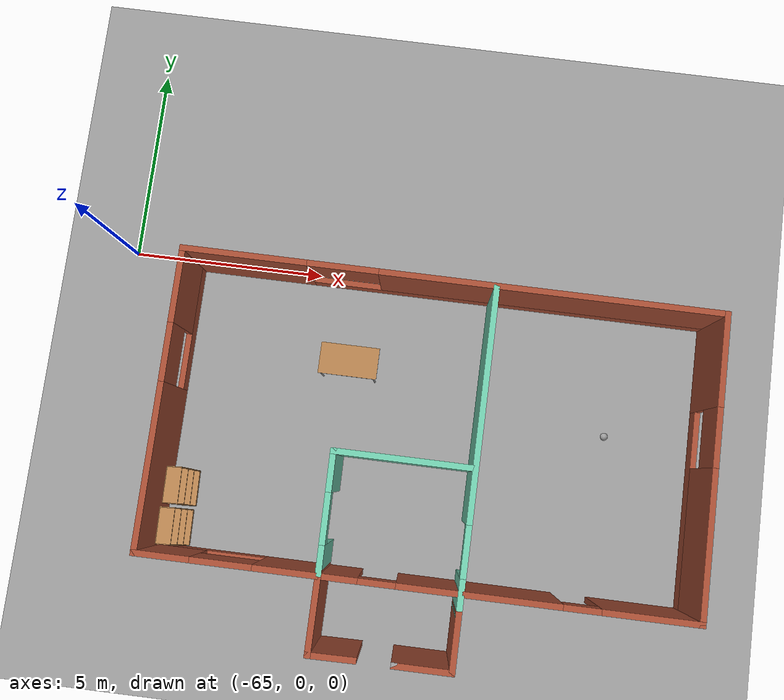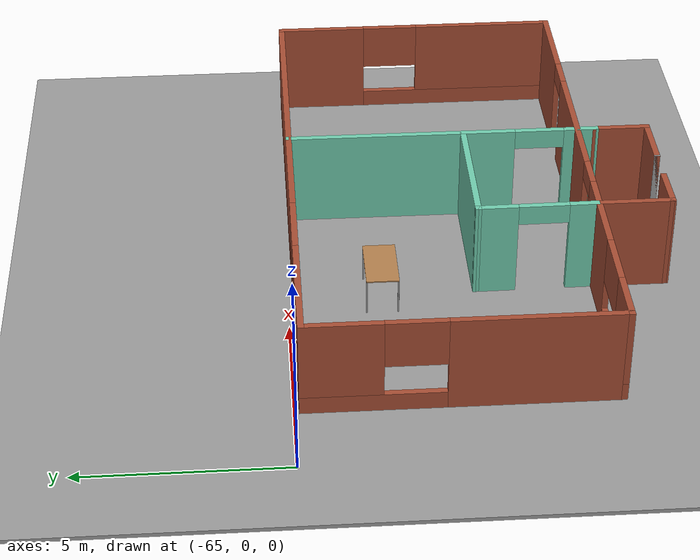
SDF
<sdf version="1.6">
 <world name="default">
  <plugin name="welcome" filename="libwelcome.so"/>
  <light name="sun" type="directional">
   <pose>0 0 10 0 -0 0</pose>
   <diffuse>0.8 0.8 0.8 1</diffuse>
   <specular>0.2 0.2 0.2 1</specular>
   <attenuation>
    <range>1000</range>
    <constant>0.9</constant>
    <linear>0.01</linear>
    <quadratic>0.001</quadratic>
   </attenuation>
   <direction>-0.5 0.1 -0.9</direction>
  </light>
  <model name="ground_plane">
   <static>1</static>
   <link name="link">
    <collision name="collision">
     <geometry><plane><normal>0 0 1</normal><size>100 100</size></plane></geometry>
     <surface>
      <contact><collide_bitmask>65535</collide_bitmask></contact>
      <friction><ode><mu>100</mu><mu2>50</mu2></ode></friction>
     </surface>
    </collision>
    <visual name="visual">
     <cast_shadows>0</cast_shadows>
     <geometry><plane><normal>0 0 1</normal><size>100 100</size></plane></geometry>
     <material>
      <script><uri>file://media/materials/scripts/gazebo.material</uri><name>Gazebo/Grey</name></script>
     </material>
    </visual>
   </link>
  </model>
  <gravity>0 0 -9.8</gravity>
  <magnetic_field>6e-06 2.3e-05 -4.2e-05</magnetic_field>
  <atmosphere type="adiabatic"/>
  <physics name="default_physics" default="0" type="ode">
   <max_step_size>0.001</max_step_size>
   <real_time_factor>1</real_time_factor>
   <real_time_update_rate>1000</real_time_update_rate>
  </physics>
  <scene><ambient>0.4 0.4 0.4 1</ambient><background>0.7 0.7 0.7 1</background><shadows>1</shadows></scene>
  <spherical_coordinates>
   <surface_model>EARTH_WGS84</surface_model>
   <latitude_deg>0</latitude_deg>
   <longitude_deg>0</longitude_deg>
   <elevation>0</elevation>
   <heading_deg>0</heading_deg>
  </spherical_coordinates>
  <model name="house">
   <pose>-56.5032 -4.754 0 0 -0 0</pose>
   <link name="Wall_0">
    <pose>0 4.56992 0 0 -0 0</pose>
    <visual name="Wall_0_Visual_0">
     <pose>-5.18175 0 1.25 0 -0 0</pose>
     <geometry><box><size>3.1365 0.15 2.5</size></box></geometry>
     <material>
      <script><uri>file://media/materials/scripts/gazebo.material</uri><name>Gazebo/Bricks</name></script>
      <ambient>1 1 1 1</ambient>
     </material>
     <meta><layer>0</layer></meta>
    </visual>
    <collision name="Wall_0_Collision_0">
     <geometry><box><size>3.1365 0.15 2.5</size></box></geometry>
     <pose>-5.18175 0 1.25 0 -0 0</pose>
    </collision>
    <visual name="Wall_0_Visual_1">
     <pose>1.56825 0 0.25 0 -0 0</pose>
     <geometry><box><size>10.3635 0.15 0.5</size></box></geometry>
     <material>
      <script><uri>file://media/materials/scripts/gazebo.material</uri><name>Gazebo/Bricks</name></script>
      <ambient>1 1 1 1</ambient>
     </material>
     <meta><layer>0</layer></meta>
    </visual>
    <collision name="Wall_0_Collision_1">
     <geometry><box><size>10.3635 0.15 0.5</size></box></geometry>
     <pose>1.56825 0 0.25 0 -0 0</pose>
    </collision>
    <visual name="Wall_0_Visual_2">
     <pose>2.45125 0 1.5 0 -0 0</pose>
     <geometry><box><size>8.5975 0.15 2</size></box></geometry>
     <material>
      <script><uri>file://media/materials/scripts/gazebo.material</uri><name>Gazebo/Bricks</name></script>
      <ambient>1 1 1 1</ambient>
     </material>
     <meta><layer>0</layer></meta>
    </visual>
    <collision name="Wall_0_Collision_2">
     <geometry><box><size>8.5975 0.15 2</size></box></geometry>
     <pose>2.45125 0 1.5 0 -0 0</pose>
    </collision>
    <visual name="Wall_0_Visual_3">
     <pose>-2.7305 0 1.9 0 -0 0</pose>
     <geometry><box><size>1.766 0.15 1.2</size></box></geometry>
     <material>
      <script><uri>file://media/materials/scripts/gazebo.material</uri><name>Gazebo/Bricks</name></script>
      <ambient>1 1 1 1</ambient>
     </material>
     <meta><layer>0</layer></meta>
    </visual>
    <collision name="Wall_0_Collision_3">
     <geometry><box><size>1.766 0.15 1.2</size></box></geometry>
     <pose>-2.7305 0 1.9 0 -0 0</pose>
    </collision>
   </link>
   <link name="Wall_1">
    <pose>6.675 0.894922 0 0 0 -1.5708</pose>
    <visual name="Wall_1_Visual_0">
     <pose>-2.58137 0 1.25 0 -0 0</pose>
     <geometry><box><size>2.33725 0.15 2.5</size></box></geometry>
     <material>
      <script><uri>file://media/materials/scripts/gazebo.material</uri><name>Gazebo/Bricks</name></script>
      <ambient>1 1 1 1</ambient>
     </material>
     <meta><layer>0</layer></meta>
    </visual>
    <collision name="Wall_1_Collision_0">
     <geometry><box><size>2.33725 0.15 2.5</size></box></geometry>
     <pose>-2.58137 0 1.25 0 -0 0</pose>
    </collision>
    <visual name="Wall_1_Visual_1">
     <pose>1.16863 0 0.25 0 -0 0</pose>
     <geometry><box><size>5.16275 0.15 0.5</size></box></geometry>
     <material>
      <script><uri>file://media/materials/scripts/gazebo.material</uri><name>Gazebo/Bricks</name></script>
      <ambient>1 1 1 1</ambient>
     </material>
     <meta><layer>0</layer></meta>
    </visual>
    <collision name="Wall_1_Collision_1">
     <geometry><box><size>5.16275 0.15 0.5</size></box></geometry>
     <pose>1.16863 0 0.25 0 -0 0</pose>
    </collision>
    <visual name="Wall_1_Visual_2">
     <pose>1.89637 0 1.5 0 -0 0</pose>
     <geometry><box><size>3.70725 0.15 2</size></box></geometry>
     <material>
      <script><uri>file://media/materials/scripts/gazebo.material</uri><name>Gazebo/Bricks</name></script>
      <ambient>1 1 1 1</ambient>
     </material>
     <meta><layer>0</layer></meta>
    </visual>
    <collision name="Wall_1_Collision_2">
     <geometry><box><size>3.70725 0.15 2</size></box></geometry>
     <pose>1.89637 0 1.5 0 -0 0</pose>
    </collision>
    <visual name="Wall_1_Visual_3">
     <pose>-0.685 0 1.9 0 -0 0</pose>
     <geometry><box><size>1.4555 0.15 1.2</size></box></geometry>
     <material>
      <script><uri>file://media/materials/scripts/gazebo.material</uri><name>Gazebo/Bricks</name></script>
      <ambient>1 1 1 1</ambient>
     </material>
     <meta><layer>0</layer></meta>
    </visual>
    <collision name="Wall_1_Collision_3">
     <geometry><box><size>1.4555 0.15 1.2</size></box></geometry>
     <pose>-0.685 0 1.9 0 -0 0</pose>
    </collision>
   </link>
   <link name="Wall_10">
    <collision name="Wall_10_Collision">
     <geometry><box><size>3.5 0.15 2.5</size></box></geometry>
     <pose>0 0 1.25 0 -0 0</pose>
    </collision>
    <visual name="Wall_10_Visual">
     <pose>0 0 1.25 0 -0 0</pose>
     <geometry><box><size>3.5 0.15 2.5</size></box></geometry>
     <material>
      <script><uri>file://media/materials/scripts/gazebo.material</uri><name>Gazebo/Grey</name></script>
      <ambient>0.435294 0.796078 0.67451 1</ambient>
     </material>
     <meta><layer>0</layer></meta>
    </visual>
    <pose>-0.679 0.142422 0 0 -0 3.14129</pose>
   </link>
   <link name="Wall_11">
    <pose>-2.337 -1.28808 0 0 0 -1.55892</pose>
    <visual name="Wall_11_Visual_0">
     <pose>-0.979955 0 1.25 0 -0 0</pose>
     <geometry><box><size>1.0518 0.15 2.5</size></box></geometry>
     <material>
      <script><uri>file://media/materials/scripts/gazebo.material</uri><name>Gazebo/Grey</name></script>
      <ambient>0.435294 0.796078 0.67451 1</ambient>
     </material>
     <meta><layer>0</layer></meta>
    </visual>
    <collision name="Wall_11_Collision_0">
     <geometry><box><size>1.0518 0.15 2.5</size></box></geometry>
     <pose>-0.979955 0 1.25 0 -0 0</pose>
    </collision>
    <visual name="Wall_11_Visual_1">
     <pose>1.14265 0 1.25 0 -0 0</pose>
     <geometry><box><size>0.72641 0.15 2.5</size></box></geometry>
     <material>
      <script><uri>file://media/materials/scripts/gazebo.material</uri><name>Gazebo/Grey</name></script>
      <ambient>0.435294 0.796078 0.67451 1</ambient>
     </material>
     <meta><layer>0</layer></meta>
    </visual>
    <collision name="Wall_11_Collision_1">
     <geometry><box><size>0.72641 0.15 2.5</size></box></geometry>
     <pose>1.14265 0 1.25 0 -0 0</pose>
    </collision>
    <visual name="Wall_11_Visual_2">
     <pose>0.162694 0 2.25 0 -0 0</pose>
     <geometry><box><size>1.2335 0.15 0.5</size></box></geometry>
     <material>
      <script><uri>file://media/materials/scripts/gazebo.material</uri><name>Gazebo/Grey</name></script>
      <ambient>0.435294 0.796078 0.67451 1</ambient>
     </material>
     <meta><layer>0</layer></meta>
    </visual>
    <collision name="Wall_11_Collision_2">
     <geometry><box><size>1.2335 0.15 0.5</size></box></geometry>
     <pose>0.162694 0 2.25 0 -0 0</pose>
    </collision>
   </link>
   <link name="Wall_15">
    <collision name="Wall_15_Collision">
     <geometry><box><size>2 0.15 2.5</size></box></geometry>
     <pose>0 0 1.25 0 -0 0</pose>
    </collision>
    <visual name="Wall_15_Visual">
     <pose>0 0 1.25 0 -0 0</pose>
     <geometry><box><size>2 0.15 2.5</size></box></geometry>
     <material>
      <script><uri>file://media/materials/scripts/gazebo.material</uri><name>Gazebo/Bricks</name></script>
      <ambient>0.760784 0.662745 0.627451 1</ambient>
     </material>
     <meta><layer>0</layer></meta>
    </visual>
    <pose>-2.32 -3.64408 0 0 0 -1.5708</pose>
   </link>
   <link name="Wall_16">
    <collision name="Wall_16_Collision">
     <geometry><box><size>1.21575 0.15 2.5</size></box></geometry>
     <pose>0 0 1.25 0 -0 0</pose>
    </collision>
    <visual name="Wall_16_Visual">
     <pose>0 0 1.25 0 -0 0</pose>
     <geometry><box><size>1.21575 0.15 2.5</size></box></geometry>
     <material>
      <script><uri>file://media/materials/scripts/gazebo.material</uri><name>Gazebo/Bricks</name></script>
      <ambient>1 1 1 1</ambient>
     </material>
     <meta><layer>0</layer></meta>
    </visual>
    <pose>-1.7875 -4.56308 0 0 -0 0.011267</pose>
   </link>
   <link name="Wall_2">
    <pose>0 -2.78008 0 0 -0 3.14159</pose>
    <visual name="Wall_2_Visual_0">
     <pose>-5.53812 0 1.25 0 -0 0</pose>
     <geometry><box><size>2.42375 0.15 2.5</size></box></geometry>
     <material>
      <script><uri>file://media/materials/scripts/gazebo.material</uri><name>Gazebo/Bricks</name></script>
      <ambient>1 1 1 1</ambient>
     </material>
     <meta><layer>0</layer></meta>
    </visual>
    <collision name="Wall_2_Collision_0">
     <geometry><box><size>2.42375 0.15 2.5</size></box></geometry>
     <pose>-5.53812 0 1.25 0 -0 0</pose>
    </collision>
    <visual name="Wall_2_Visual_1">
     <pose>-1.46412 0 1.25 0 -0 0</pose>
     <geometry><box><size>3.92425 0.15 2.5</size></box></geometry>
     <material>
      <script><uri>file://media/materials/scripts/gazebo.material</uri><name>Gazebo/Bricks</name></script>
      <ambient>1 1 1 1</ambient>
     </material>
     <meta><layer>0</layer></meta>
    </visual>
    <collision name="Wall_2_Collision_1">
     <geometry><box><size>3.92425 0.15 2.5</size></box></geometry>
     <pose>-1.46412 0 1.25 0 -0 0</pose>
    </collision>
    <visual name="Wall_2_Visual_2">
     <pose>2.6405 0 1.25 0 -0 0</pose>
     <geometry><box><size>2.485 0.15 2.5</size></box></geometry>
     <material>
      <script><uri>file://media/materials/scripts/gazebo.material</uri><name>Gazebo/Bricks</name></script>
      <ambient>1 1 1 1</ambient>
     </material>
     <meta><layer>0</layer></meta>
    </visual>
    <collision name="Wall_2_Collision_2">
     <geometry><box><size>2.485 0.15 2.5</size></box></geometry>
     <pose>2.6405 0 1.25 0 -0 0</pose>
    </collision>
    <visual name="Wall_2_Visual_3">
     <pose>5.3165 0 0.25 0 -0 0</pose>
     <geometry><box><size>2.867 0.15 0.5</size></box></geometry>
     <material>
      <script><uri>file://media/materials/scripts/gazebo.material</uri><name>Gazebo/Bricks</name></script>
      <ambient>1 1 1 1</ambient>
     </material>
     <meta><layer>0</layer></meta>
    </visual>
    <collision name="Wall_2_Collision_3">
     <geometry><box><size>2.867 0.15 0.5</size></box></geometry>
     <pose>5.3165 0 0.25 0 -0 0</pose>
    </collision>
    <visual name="Wall_2_Visual_4">
     <pose>6.05575 0 1.5 0 -0 0</pose>
     <geometry><box><size>1.3885 0.15 2</size></box></geometry>
     <material>
      <script><uri>file://media/materials/scripts/gazebo.material</uri><name>Gazebo/Bricks</name></script>
      <ambient>1 1 1 1</ambient>
     </material>
     <meta><layer>0</layer></meta>
    </visual>
    <collision name="Wall_2_Collision_4">
     <geometry><box><size>1.3885 0.15 2</size></box></geometry>
     <pose>6.05575 0 1.5 0 -0 0</pose>
    </collision>
    <visual name="Wall_2_Visual_5">
     <pose>4.62225 0 1.9 0 -0 0</pose>
     <geometry><box><size>1.4785 0.15 1.2</size></box></geometry>
     <material>
      <script><uri>file://media/materials/scripts/gazebo.material</uri><name>Gazebo/Bricks</name></script>
      <ambient>1 1 1 1</ambient>
     </material>
     <meta><layer>0</layer></meta>
    </visual>
    <collision name="Wall_2_Collision_5">
     <geometry><box><size>1.4785 0.15 1.2</size></box></geometry>
     <pose>4.62225 0 1.9 0 -0 0</pose>
    </collision>
    <visual name="Wall_2_Visual_6">
     <pose>-3.87625 0 2.25 0 -0 0</pose>
     <geometry><box><size>0.9 0.15 0.5</size></box></geometry>
     <material>
      <script><uri>file://media/materials/scripts/gazebo.material</uri><name>Gazebo/Bricks</name></script>
      <ambient>1 1 1 1</ambient>
     </material>
     <meta><layer>0</layer></meta>
    </visual>
    <collision name="Wall_2_Collision_6">
     <geometry><box><size>0.9 0.15 0.5</size></box></geometry>
     <pose>-3.87625 0 2.25 0 -0 0</pose>
    </collision>
    <visual name="Wall_2_Visual_7">
     <pose>0.948 0 2.25 0 -0 0</pose>
     <geometry><box><size>0.9 0.15 0.5</size></box></geometry>
     <material>
      <script><uri>file://media/materials/scripts/gazebo.material</uri><name>Gazebo/Bricks</name></script>
      <ambient>1 1 1 1</ambient>
     </material>
     <meta><layer>0</layer></meta>
    </visual>
    <collision name="Wall_2_Collision_7">
     <geometry><box><size>0.9 0.15 0.5</size></box></geometry>
     <pose>0.948 0 2.25 0 -0 0</pose>
    </collision>
   </link>
   <link name="Wall_22">
    <collision name="Wall_22_Collision">
     <geometry><box><size>0.15 0.15 2.5</size></box></geometry>
     <pose>0 0 1.25 0 -0 0</pose>
    </collision>
    <visual name="Wall_22_Visual">
     <pose>0 0 1.25 0 -0 0</pose>
     <geometry><box><size>0.15 0.15 2.5</size></box></geometry>
     <material>
      <script><uri>file://media/materials/scripts/gazebo.material</uri><name>Gazebo/Grey</name></script>
      <ambient>1 1 1 1</ambient>
     </material>
     <meta><layer>0</layer></meta>
    </visual>
    <pose>-0.309 -4.56108 0 0 -0 0</pose>
   </link>
   <link name="Wall_29">
    <collision name="Wall_29_Collision">
     <geometry><box><size>1.4655 0.15 2.5</size></box></geometry>
     <pose>0 0 1.25 0 -0 0</pose>
    </collision>
    <visual name="Wall_29_Visual">
     <pose>0 0 1.25 0 -0 0</pose>
     <geometry><box><size>1.4655 0.15 2.5</size></box></geometry>
     <material>
      <script><uri>file://media/materials/scripts/gazebo.material</uri><name>Gazebo/Bricks</name></script>
      <ambient>1 1 1 1</ambient>
     </material>
     <meta><layer>0</layer></meta>
    </visual>
    <pose>1.041 -3.90308 0 0 0 -1.5708</pose>
   </link>
   <link name="Wall_3">
    <pose>-6.675 0.894922 0 0 -0 1.5708</pose>
    <visual name="Wall_3_Visual_0">
     <pose>-1.6865 0 1.25 0 -0 0</pose>
     <geometry><box><size>4.127 0.15 2.5</size></box></geometry>
     <material>
      <script><uri>file://media/materials/scripts/gazebo.material</uri><name>Gazebo/Bricks</name></script>
      <ambient>1 1 1 1</ambient>
     </material>
     <meta><layer>0</layer></meta>
    </visual>
    <collision name="Wall_3_Collision_0">
     <geometry><box><size>4.127 0.15 2.5</size></box></geometry>
     <pose>-1.6865 0 1.25 0 -0 0</pose>
    </collision>
    <visual name="Wall_3_Visual_1">
     <pose>2.0635 0 0.25 0 -0 0</pose>
     <geometry><box><size>3.373 0.15 0.5</size></box></geometry>
     <material>
      <script><uri>file://media/materials/scripts/gazebo.material</uri><name>Gazebo/Bricks</name></script>
      <ambient>1 1 1 1</ambient>
     </material>
     <meta><layer>0</layer></meta>
    </visual>
    <collision name="Wall_3_Collision_1">
     <geometry><box><size>3.373 0.15 0.5</size></box></geometry>
     <pose>2.0635 0 0.25 0 -0 0</pose>
    </collision>
    <visual name="Wall_3_Visual_2">
     <pose>2.7855 0 1.5 0 -0 0</pose>
     <geometry><box><size>1.929 0.15 2</size></box></geometry>
     <material>
      <script><uri>file://media/materials/scripts/gazebo.material</uri><name>Gazebo/Bricks</name></script>
      <ambient>1 1 1 1</ambient>
     </material>
     <meta><layer>0</layer></meta>
    </visual>
    <collision name="Wall_3_Collision_2">
     <geometry><box><size>1.929 0.15 2</size></box></geometry>
     <pose>2.7855 0 1.5 0 -0 0</pose>
    </collision>
    <visual name="Wall_3_Visual_3">
     <pose>1.099 0 1.9 0 -0 0</pose>
     <geometry><box><size>1.444 0.15 1.2</size></box></geometry>
     <material>
      <script><uri>file://media/materials/scripts/gazebo.material</uri><name>Gazebo/Bricks</name></script>
      <ambient>1 1 1 1</ambient>
     </material>
     <meta><layer>0</layer></meta>
    </visual>
    <collision name="Wall_3_Collision_3">
     <geometry><box><size>1.444 0.15 1.2</size></box></geometry>
     <pose>1.099 0 1.9 0 -0 0</pose>
    </collision>
   </link>
   <link name="Wall_30">
    <collision name="Wall_30_Collision">
     <geometry><box><size>1.5 0.15 2.5</size></box></geometry>
     <pose>0 0 1.25 0 -0 0</pose>
    </collision>
    <visual name="Wall_30_Visual">
     <pose>0 0 1.25 0 -0 0</pose>
     <geometry><box><size>1.5 0.15 2.5</size></box></geometry>
     <material>
      <script><uri>file://media/materials/scripts/gazebo.material</uri><name>Gazebo/Bricks</name></script>
      <ambient>1 1 1 1</ambient>
     </material>
     <meta><layer>0</layer></meta>
    </visual>
    <pose>0.366 -4.56108 0 0 -0 3.14159</pose>
   </link>
   <link name="Wall_5">
    <pose>1.047 0.656922 0 0 0 -1.57233</pose>
    <visual name="Wall_5_Visual_0">
     <pose>-1.0669 0 1.25 0 -0 0</pose>
     <geometry><box><size>5.8202 0.15 2.5</size></box></geometry>
     <material>
      <script><uri>file://media/materials/scripts/gazebo.material</uri><name>Gazebo/Grey</name></script>
      <ambient>0.435294 0.796078 0.67451 1</ambient>
     </material>
     <meta><layer>0</layer></meta>
    </visual>
    <collision name="Wall_5_Collision_0">
     <geometry><box><size>5.8202 0.15 2.5</size></box></geometry>
     <pose>-1.0669 0 1.25 0 -0 0</pose>
    </collision>
    <visual name="Wall_5_Visual_1">
     <pose>3.5326 0 1.25 0 -0 0</pose>
     <geometry><box><size>0.888809 0.15 2.5</size></box></geometry>
     <material>
      <script><uri>file://media/materials/scripts/gazebo.material</uri><name>Gazebo/Grey</name></script>
      <ambient>0.435294 0.796078 0.67451 1</ambient>
     </material>
     <meta><layer>0</layer></meta>
    </visual>
    <collision name="Wall_5_Collision_1">
     <geometry><box><size>0.888809 0.15 2.5</size></box></geometry>
     <pose>3.5326 0 1.25 0 -0 0</pose>
    </collision>
    <visual name="Wall_5_Visual_2">
     <pose>2.4657 0 2.25 0 -0 0</pose>
     <geometry><box><size>1.245 0.15 0.5</size></box></geometry>
     <material>
      <script><uri>file://media/materials/scripts/gazebo.material</uri><name>Gazebo/Grey</name></script>
      <ambient>0.435294 0.796078 0.67451 1</ambient>
     </material>
     <meta><layer>0</layer></meta>
    </visual>
    <collision name="Wall_5_Collision_2">
     <geometry><box><size>1.245 0.15 0.5</size></box></geometry>
     <pose>2.4657 0 2.25 0 -0 0</pose>
    </collision>
   </link>
   <static>1</static>
  </model>
  <model name="ground_plane_0">
   <static>1</static>
   <link name="link">
    <collision name="collision">
     <geometry><plane><normal>0 0 1</normal><size>100 100</size></plane></geometry>
     <surface>
      <contact><collide_bitmask>65535</collide_bitmask></contact>
      <friction><ode><mu>100</mu><mu2>50</mu2></ode></friction>
     </surface>
    </collision>
    <visual name="visual">
     <cast_shadows>0</cast_shadows>
     <geometry><plane><normal>0 0 1</normal><size>100 100</size></plane></geometry>
     <material>
      <script><uri>file://media/materials/scripts/gazebo.material</uri><name>Gazebo/Grey</name></script>
     </material>
    </visual>
   </link>
   <pose>-54.1094 -15.1742 0 0 -0 0</pose>
  </model>
  <model name="ball">
   <link name="link_0">
    <inertial>
     <mass>1</mass>
     <inertia><ixx>0.1</ixx><ixy>0</ixy><ixz>0</ixz><iyy>0.1</iyy><iyz>0</iyz><izz>0.1</izz></inertia>
    </inertial>
    <visual name="visual">
     <geometry><sphere><radius>0.1</radius></sphere></geometry>
     <material>
      <lighting>1</lighting>
      <script><uri>file://media/materials/scripts/gazebo.material</uri><name>Gazebo/Grey</name></script>
      <shader type="pixel"><normal_map>__default__</normal_map></shader>
      <ambient>1 1 1 1</ambient>
      <diffuse>1 1 1 1</diffuse>
      <specular>1 1 1 1</specular>
      <emissive>1 1 1 1</emissive>
     </material>
    </visual>
    <collision name="collision">
     <geometry><sphere><radius>0.1</radius></sphere></geometry>
     <surface>
      <friction>
       <ode><mu>1</mu><mu2>1</mu2><fdir1>0 0 0</fdir1><slip1>0</slip1><slip2>0</slip2></ode>
       <torsional>
        <coefficient>1</coefficient>
        <patch_radius>0</patch_radius>
        <surface_radius>0</surface_radius>
        <use_patch_radius>1</use_patch_radius>
        <ode><slip>0</slip></ode>
       </torsional>
      </friction>
      <bounce><restitution_coefficient>0</restitution_coefficient><threshold>1e+06</threshold></bounce>
      <contact>
       <collide_without_contact>0</collide_without_contact>
       <collide_without_contact_bitmask>1</collide_without_contact_bitmask>
       <collide_bitmask>1</collide_bitmask>
       <ode>
        <soft_cfm>0</soft_cfm>
        <soft_erp>0.2</soft_erp>
        <kp>1e+13</kp>
        <kd>1</kd>
        <max_vel>0.01</max_vel>
        <min_depth>0</min_depth>
       </ode>
       <bullet>
        <split_impulse>1</split_impulse>
        <split_impulse_penetration_threshold>-0.01</split_impulse_penetration_threshold>
        <soft_cfm>0</soft_cfm>
        <soft_erp>0.2</soft_erp>
        <kp>1e+13</kp>
        <kd>1</kd>
       </bullet>
      </contact>
     </surface>
    </collision>
   </link>
   <static>0</static>
   <pose>-52.0961 -3.33817 0.09999 0 -0 0</pose>
  </model>
  <model name="bookshelf">
   <static>1</static>
   <link name="link">
    <inertial><mass>1</mass></inertial>
    <collision name="back">
     <pose>0 0.005 0.6 0 -0 0</pose>
     <geometry><box><size>0.9 0.01 1.2</size></box></geometry>
    </collision>
    <visual name="visual1">
     <pose>0 0.005 0.6 0 -0 0</pose>
     <geometry><box><size>0.9 0.01 1.2</size></box></geometry>
     <material>
      <script><uri>file://media/materials/scripts/gazebo.material</uri><name>Gazebo/Wood</name></script>
     </material>
    </visual>
    <collision name="left_side">
     <pose>0.45 -0.195 0.6 0 -0 0</pose>
     <geometry><box><size>0.02 0.4 1.2</size></box></geometry>
    </collision>
    <visual name="visual2">
     <pose>0.45 -0.195 0.6 0 -0 0</pose>
     <geometry><box><size>0.02 0.4 1.2</size></box></geometry>
     <material>
      <script><uri>file://media/materials/scripts/gazebo.material</uri><name>Gazebo/Wood</name></script>
     </material>
    </visual>
    <collision name="right_side">
     <pose>-0.45 -0.195 0.6 0 -0 0</pose>
     <geometry><box><size>0.02 0.4 1.2</size></box></geometry>
    </collision>
    <visual name="visual3">
     <pose>-0.45 -0.195 0.6 0 -0 0</pose>
     <geometry><box><size>0.02 0.4 1.2</size></box></geometry>
     <material>
      <script><uri>file://media/materials/scripts/gazebo.material</uri><name>Gazebo/Wood</name></script>
     </material>
    </visual>
    <collision name="bottom">
     <pose>0 -0.195 0.03 0 -0 0</pose>
     <geometry><box><size>0.88 0.4 0.06</size></box></geometry>
    </collision>
    <visual name="visual4">
     <pose>0 -0.195 0.03 0 -0 0</pose>
     <geometry><box><size>0.88 0.4 0.06</size></box></geometry>
     <material>
      <script><uri>file://media/materials/scripts/gazebo.material</uri><name>Gazebo/Wood</name></script>
     </material>
    </visual>
    <collision name="top">
     <pose>0 -0.195 1.19 0 -0 0</pose>
     <geometry><box><size>0.88 0.4 0.02</size></box></geometry>
    </collision>
    <visual name="visual5">
     <pose>0 -0.195 1.19 0 -0 0</pose>
     <geometry><box><size>0.88 0.4 0.02</size></box></geometry>
     <material>
      <script><uri>file://media/materials/scripts/gazebo.material</uri><name>Gazebo/Wood</name></script>
     </material>
    </visual>
    <collision name="low_shelf">
     <pose>0 -0.195 0.43 0 -0 0</pose>
     <geometry><box><size>0.88 0.4 0.02</size></box></geometry>
    </collision>
    <visual name="visual6">
     <pose>0 -0.195 0.43 0 -0 0</pose>
     <geometry><box><size>0.88 0.4 0.02</size></box></geometry>
     <material>
      <script><uri>file://media/materials/scripts/gazebo.material</uri><name>Gazebo/Wood</name></script>
     </material>
    </visual>
    <collision name="high_shelf">
     <pose>0 -0.195 0.8 0 -0 0</pose>
     <geometry><box><size>0.88 0.4 0.02</size></box></geometry>
    </collision>
    <visual name="visual7">
     <pose>0 -0.195 0.8 0 -0 0</pose>
     <geometry><box><size>0.88 0.4 0.02</size></box></geometry>
     <material>
      <script><uri>file://media/materials/scripts/gazebo.material</uri><name>Gazebo/Wood</name></script>
     </material>
    </visual>
   </link>
   <pose>-62.8102 -6.99864 0.021134 -0.187085 0.059106 1.61108</pose>
  </model>
  <model name="bookshelf_clone">
   <static>1</static>
   <link name="link">
    <inertial><mass>1</mass></inertial>
    <collision name="back">
     <pose>0 0.005 0.6 0 -0 0</pose>
     <geometry><box><size>0.9 0.01 1.2</size></box></geometry>
    </collision>
    <visual name="visual1">
     <pose>0 0.005 0.6 0 -0 0</pose>
     <geometry><box><size>0.9 0.01 1.2</size></box></geometry>
     <material>
      <script><uri>file://media/materials/scripts/gazebo.material</uri><name>Gazebo/Wood</name></script>
     </material>
    </visual>
    <collision name="left_side">
     <pose>0.45 -0.195 0.6 0 -0 0</pose>
     <geometry><box><size>0.02 0.4 1.2</size></box></geometry>
    </collision>
    <visual name="visual2">
     <pose>0.45 -0.195 0.6 0 -0 0</pose>
     <geometry><box><size>0.02 0.4 1.2</size></box></geometry>
     <material>
      <script><uri>file://media/materials/scripts/gazebo.material</uri><name>Gazebo/Wood</name></script>
     </material>
    </visual>
    <collision name="right_side">
     <pose>-0.45 -0.195 0.6 0 -0 0</pose>
     <geometry><box><size>0.02 0.4 1.2</size></box></geometry>
    </collision>
    <visual name="visual3">
     <pose>-0.45 -0.195 0.6 0 -0 0</pose>
     <geometry><box><size>0.02 0.4 1.2</size></box></geometry>
     <material>
      <script><uri>file://media/materials/scripts/gazebo.material</uri><name>Gazebo/Wood</name></script>
     </material>
    </visual>
    <collision name="bottom">
     <pose>0 -0.195 0.03 0 -0 0</pose>
     <geometry><box><size>0.88 0.4 0.06</size></box></geometry>
    </collision>
    <visual name="visual4">
     <pose>0 -0.195 0.03 0 -0 0</pose>
     <geometry><box><size>0.88 0.4 0.06</size></box></geometry>
     <material>
      <script><uri>file://media/materials/scripts/gazebo.material</uri><name>Gazebo/Wood</name></script>
     </material>
    </visual>
    <collision name="top">
     <pose>0 -0.195 1.19 0 -0 0</pose>
     <geometry><box><size>0.88 0.4 0.02</size></box></geometry>
    </collision>
    <visual name="visual5">
     <pose>0 -0.195 1.19 0 -0 0</pose>
     <geometry><box><size>0.88 0.4 0.02</size></box></geometry>
     <material>
      <script><uri>file://media/materials/scripts/gazebo.material</uri><name>Gazebo/Wood</name></script>
     </material>
    </visual>
    <collision name="low_shelf">
     <pose>0 -0.195 0.43 0 -0 0</pose>
     <geometry><box><size>0.88 0.4 0.02</size></box></geometry>
    </collision>
    <visual name="visual6">
     <pose>0 -0.195 0.43 0 -0 0</pose>
     <geometry><box><size>0.88 0.4 0.02</size></box></geometry>
     <material>
      <script><uri>file://media/materials/scripts/gazebo.material</uri><name>Gazebo/Wood</name></script>
     </material>
    </visual>
    <collision name="high_shelf">
     <pose>0 -0.195 0.8 0 -0 0</pose>
     <geometry><box><size>0.88 0.4 0.02</size></box></geometry>
    </collision>
    <visual name="visual7">
     <pose>0 -0.195 0.8 0 -0 0</pose>
     <geometry><box><size>0.88 0.4 0.02</size></box></geometry>
     <material>
      <script><uri>file://media/materials/scripts/gazebo.material</uri><name>Gazebo/Wood</name></script>
     </material>
    </visual>
   </link>
   <pose>-62.796 -5.98945 0.021134 -0.187085 0.059106 1.61108</pose>
  </model>
  <model name="table">
   <static>1</static>
   <link name="link">
    <collision name="surface">
     <pose>0 0 1 0 -0 0</pose>
     <geometry><box><size>1.5 0.8 0.03</size></box></geometry>
     <surface><friction><ode><mu>0.6</mu><mu2>0.6</mu2></ode></friction></surface>
    </collision>
    <visual name="visual1">
     <pose>0 0 1 0 -0 0</pose>
     <geometry><box><size>1.5 0.8 0.03</size></box></geometry>
     <material>
      <script><uri>file://media/materials/scripts/gazebo.material</uri><name>Gazebo/Wood</name></script>
     </material>
    </visual>
    <collision name="front_left_leg">
     <pose>0.68 0.38 0.5 0 -0 0</pose>
     <geometry><cylinder><radius>0.02</radius><length>1</length></cylinder></geometry>
    </collision>
    <visual name="front_left_leg">
     <pose>0.68 0.38 0.5 0 -0 0</pose>
     <geometry><cylinder><radius>0.02</radius><length>1</length></cylinder></geometry>
     <material>
      <script><uri>file://media/materials/scripts/gazebo.material</uri><name>Gazebo/Grey</name></script>
     </material>
    </visual>
    <collision name="front_right_leg">
     <pose>0.68 -0.38 0.5 0 -0 0</pose>
     <geometry><cylinder><radius>0.02</radius><length>1</length></cylinder></geometry>
    </collision>
    <visual name="front_right_leg">
     <pose>0.68 -0.38 0.5 0 -0 0</pose>
     <geometry><cylinder><radius>0.02</radius><length>1</length></cylinder></geometry>
     <material>
      <script><uri>file://media/materials/scripts/gazebo.material</uri><name>Gazebo/Grey</name></script>
     </material>
    </visual>
    <collision name="back_right_leg">
     <pose>-0.68 -0.38 0.5 0 -0 0</pose>
     <geometry><cylinder><radius>0.02</radius><length>1</length></cylinder></geometry>
    </collision>
    <visual name="back_right_leg">
     <pose>-0.68 -0.38 0.5 0 -0 0</pose>
     <geometry><cylinder><radius>0.02</radius><length>1</length></cylinder></geometry>
     <material>
      <script><uri>file://media/materials/scripts/gazebo.material</uri><name>Gazebo/Grey</name></script>
     </material>
    </visual>
    <collision name="back_left_leg">
     <pose>-0.68 0.38 0.5 0 -0 0</pose>
     <geometry><cylinder><radius>0.02</radius><length>1</length></cylinder></geometry>
    </collision>
    <visual name="back_left_leg">
     <pose>-0.68 0.38 0.5 0 -0 0</pose>
     <geometry><cylinder><radius>0.02</radius><length>1</length></cylinder></geometry>
     <material>
      <script><uri>file://media/materials/scripts/gazebo.material</uri><name>Gazebo/Grey</name></script>
     </material>
    </visual>
   </link>
   <pose>-58.9069 -2.27235 0 0 -0 0</pose>
  </model>
 </world>
</sdf>
